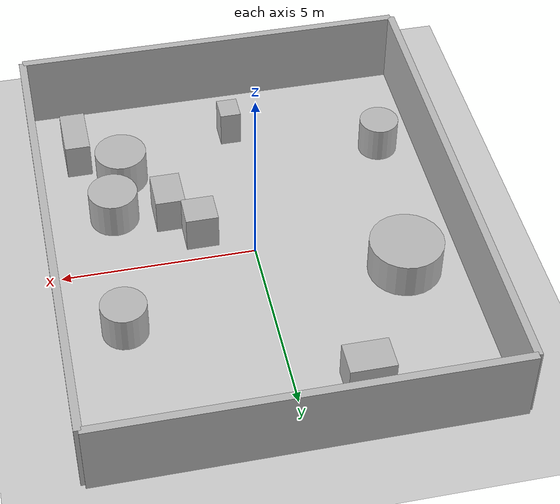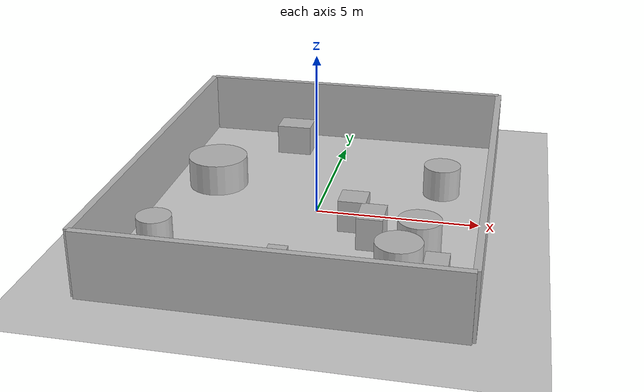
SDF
<?xml version="1.0"?>
<sdf version="1.6">
  <world name="env_67">

    <include><uri>model://ground_plane</uri></include>
    <include><uri>model://sun</uri></include>

    <!-- WALLS -->
    <model name="wall_north"><static>true</static><pose>0 6.315161738475325 1 0 0 0</pose>
      <link name="link"><collision name="collision">
        <geometry><box><size>10.366139473389866 0.2 2</size></box></geometry>
      </collision><visual name="visual">
        <geometry><box><size>10.366139473389866 0.2 2</size></box></geometry>
      </visual></link>
    </model>

    <model name="wall_south"><static>true</static><pose>0 -6.315161738475325 1 0 0 0</pose>
      <link name="link"><collision name="collision">
        <geometry><box><size>10.366139473389866 0.2 2</size></box></geometry>
      </collision><visual name="visual">
        <geometry><box><size>10.366139473389866 0.2 2</size></box></geometry>
      </visual></link>
    </model>

    <model name="wall_east"><static>true</static><pose>5.183069736694933 0 1 0 0 1.57</pose>
      <link name="link"><collision name="collision">
        <geometry><box><size>12.63032347695065 0.2 2</size></box></geometry>
      </collision><visual name="visual">
        <geometry><box><size>12.63032347695065 0.2 2</size></box></geometry>
      </visual></link>
    </model>

    <model name="wall_west"><static>true</static><pose>-5.183069736694933 0 1 0 0 1.57</pose>
      <link name="link"><collision name="collision">
        <geometry><box><size>12.63032347695065 0.2 2</size></box></geometry>
      </collision><visual name="visual">
        <geometry><box><size>12.63032347695065 0.2 2</size></box></geometry>
      </visual></link>
    </model>

    <!-- SENSOR -->

    <model name="lidar_sensor">
      <static>true</static>
      <pose>-3.0555188283813974 0.8622891494374088 0.4 0 0 0</pose>
      <link name="link">
        <sensor name="lidar" type="ray">
          <pose>0 0 0 0 0 0</pose>
          <visualize>true</visualize>
          <always_on>true</always_on>
          <update_rate>10</update_rate>
          <ray>
            <scan><horizontal>
              <samples>120</samples>
              <resolution>1</resolution>
              <min_angle>-3.14159</min_angle>
              <max_angle>3.14159</max_angle>
            </horizontal></scan>
            <range><min>0.15</min><max>20.0</max><resolution>0.01</resolution></range>
          </ray>
          <plugin name="lidar_plugin" filename="liblidar_plugin.so"/>
        </sensor>
      </link>
    </model>

    <!-- OBSTACLES -->

    <model name="obstacle_0">
      <static>true</static>
      <pose>4.071146240312266 -4.418829148019981 0.5 0 0 0</pose>
      <link name="link">
        <collision name="collision">
          <geometry><box><size>0.66 1.38 1.0</size></box></geometry>
        </collision>
        <visual name="visual">
          <geometry><box><size>0.66 1.38 1.0</size></box></geometry>
        </visual>
      </link>
    </model>

    <model name="obstacle_1">
      <static>true</static>
      <pose>-3.582827421958963 1.3597060740667368 0.5 0 0 0</pose>
      <link name="link">
        <collision name="collision">
          <geometry><cylinder><radius>0.95</radius><length>1.0</length></cylinder></geometry>
        </collision>
        <visual name="visual">
          <geometry><cylinder><radius>0.95</radius><length>1.0</length></cylinder></geometry>
        </visual>
      </link>
    </model>

    <model name="obstacle_2">
      <static>true</static>
      <pose>1.2971287791177541 -0.8107395295987043 0.5 0 0 0</pose>
      <link name="link">
        <collision name="collision">
          <geometry><box><size>0.84 0.82 1.0</size></box></geometry>
        </collision>
        <visual name="visual">
          <geometry><box><size>0.84 0.82 1.0</size></box></geometry>
        </visual>
      </link>
    </model>

    <model name="obstacle_3">
      <static>true</static>
      <pose>-4.085518983396683 -3.2233756354644307 0.5 0 0 0</pose>
      <link name="link">
        <collision name="collision">
          <geometry><cylinder><radius>0.52</radius><length>1.0</length></cylinder></geometry>
        </collision>
        <visual name="visual">
          <geometry><cylinder><radius>0.52</radius><length>1.0</length></cylinder></geometry>
        </visual>
      </link>
    </model>

    <model name="obstacle_4">
      <static>true</static>
      <pose>-0.17152606483913857 -4.53215512519435 0.5 0 0 0</pose>
      <link name="link">
        <collision name="collision">
          <geometry><box><size>0.55 0.66 1.0</size></box></geometry>
        </collision>
        <visual name="visual">
          <geometry><box><size>0.55 0.66 1.0</size></box></geometry>
        </visual>
      </link>
    </model>

    <model name="obstacle_5">
      <static>true</static>
      <pose>2.9758039280930486 -3.3679045420631697 0.5 0 0 0</pose>
      <link name="link">
        <collision name="collision">
          <geometry><cylinder><radius>0.68</radius><length>1.0</length></cylinder></geometry>
        </collision>
        <visual name="visual">
          <geometry><cylinder><radius>0.68</radius><length>1.0</length></cylinder></geometry>
        </visual>
      </link>
    </model>

    <model name="obstacle_6">
      <static>true</static>
      <pose>1.9822668346402477 -1.7138834796117823 0.5 0 0 0</pose>
      <link name="link">
        <collision name="collision">
          <geometry><box><size>0.77 1.05 1.0</size></box></geometry>
        </collision>
        <visual name="visual">
          <geometry><box><size>0.77 1.05 1.0</size></box></geometry>
        </visual>
      </link>
    </model>

    <model name="obstacle_7">
      <static>true</static>
      <pose>-1.7260054315110587 4.754560002770894 0.5 0 0 0</pose>
      <link name="link">
        <collision name="collision">
          <geometry><box><size>1.15 0.86 1.0</size></box></geometry>
        </collision>
        <visual name="visual">
          <geometry><box><size>1.15 0.86 1.0</size></box></geometry>
        </visual>
      </link>
    </model>

    <model name="obstacle_8">
      <static>true</static>
      <pose>3.3847994335234537 -1.905086169930862 0.5 0 0 0</pose>
      <link name="link">
        <collision name="collision">
          <geometry><cylinder><radius>0.64</radius><length>1.0</length></cylinder></geometry>
        </collision>
        <visual name="visual">
          <geometry><cylinder><radius>0.64</radius><length>1.0</length></cylinder></geometry>
        </visual>
      </link>
    </model>

    <model name="obstacle_9">
      <static>true</static>
      <pose>3.6624573052383296 2.037924907916767 0.5 0 0 0</pose>
      <link name="link">
        <collision name="collision">
          <geometry><cylinder><radius>0.58</radius><length>1.0</length></cylinder></geometry>
        </collision>
        <visual name="visual">
          <geometry><cylinder><radius>0.58</radius><length>1.0</length></cylinder></geometry>
        </visual>
      </link>
    </model>

  </world>
</sdf>
